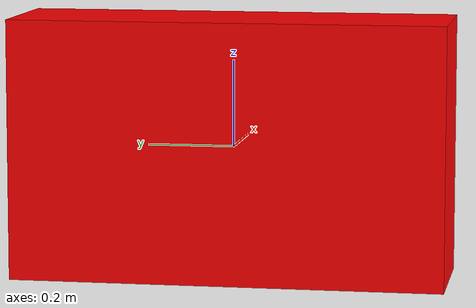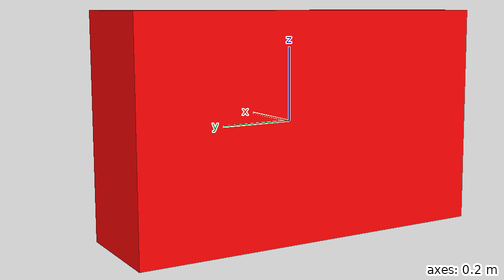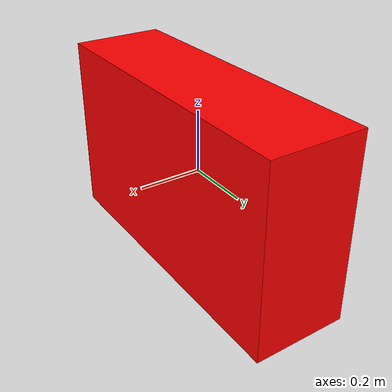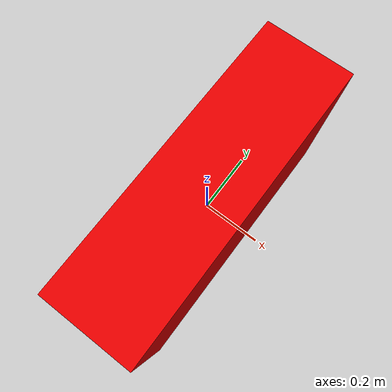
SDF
<sdf version="1.6">
  <model name="red_obstacle">
    <static>true</static>
    <link name="link">
      <visual name="visual">
        <geometry>
          <box>
            <size>0.3 1 0.6</size> <!-- Size of the box: length, width, height -->
          </box>
        </geometry>
        <material>
          <ambient>1 0 0 1</ambient> <!-- Red color -->
          <diffuse>1 0 0 1</diffuse> <!-- Red color -->
        </material>
      </visual>
      <collision name="collision">
        <geometry>
          <box>
            <size>0.3 1 0.6</size>
          </box>
        </geometry>
      </collision>
    </link>
  </model>
</sdf>
